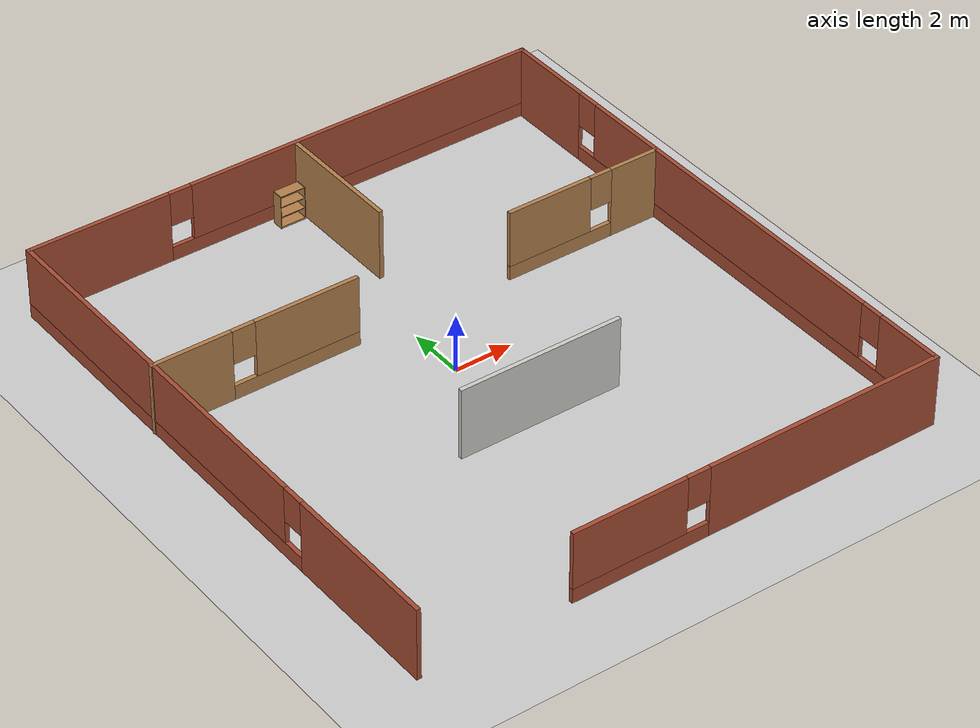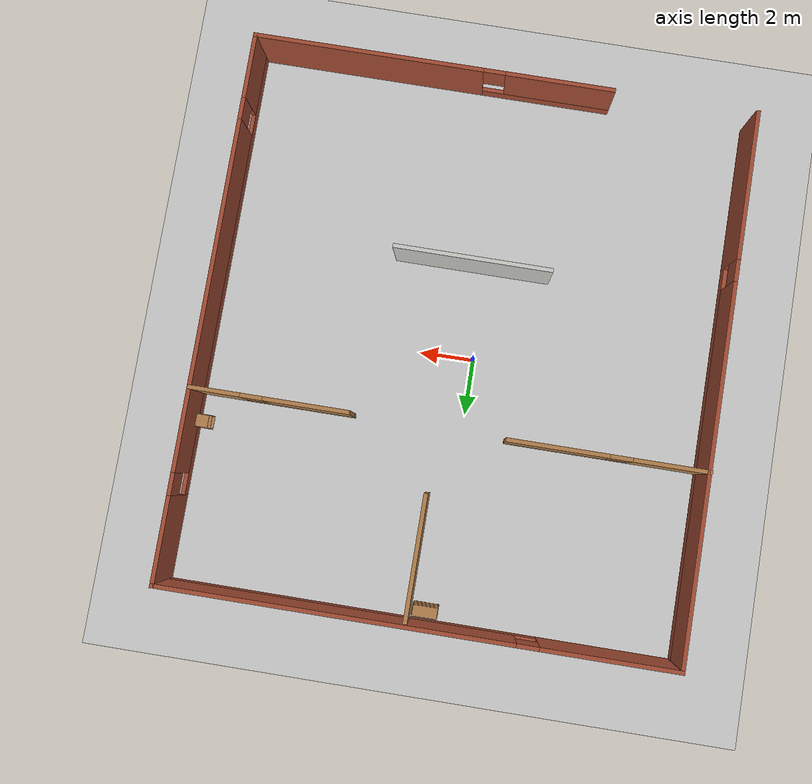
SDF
<sdf version="1.6">
 <world name="default">
  <light name="sun" type="directional">
   <pose>0 0 10 0 -0 0</pose>
   <diffuse>0.8 0.8 0.8 1</diffuse>
   <specular>0.1 0.1 0.1 1</specular>
   <attenuation>
    <range>1000</range>
    <constant>0.9</constant>
    <linear>0.01</linear>
    <quadratic>0.001</quadratic>
   </attenuation>
   <direction>-0.5 0.5 -1</direction>
  </light>
  <model name="ground_plane">
   <static>1</static>
   <link name="link">
    <collision name="collision">
     <geometry><plane><normal>0 0 1</normal><size>100 100</size></plane></geometry>
     <surface><friction><ode><mu>100</mu><mu2>50</mu2></ode></friction></surface>
    </collision>
    <visual name="visual">
     <cast_shadows>0</cast_shadows>
     <geometry><plane><normal>0 0 1</normal><size>100 100</size></plane></geometry>
     <material>
      <script><uri>file://media/materials/scripts/gazebo.material</uri><name>Gazebo/Grey</name></script>
     </material>
    </visual>
   </link>
  </model>
  <gravity>0 0 -9.8</gravity>
  <magnetic_field>6e-06 2.3e-05 -4.2e-05</magnetic_field>
  <atmosphere type="adiabatic"/>
  <physics name="default_physics" default="0" type="ode">
   <max_step_size>0.001</max_step_size>
   <real_time_factor>1</real_time_factor>
   <real_time_update_rate>1000</real_time_update_rate>
  </physics>
  <scene><ambient>0.4 0.4 0.4 1</ambient><background>0.7 0.7 0.7 1</background><shadows>1</shadows></scene>
  <spherical_coordinates>
   <surface_model>EARTH_WGS84</surface_model>
   <latitude_deg>0</latitude_deg>
   <longitude_deg>0</longitude_deg>
   <elevation>0</elevation>
   <heading_deg>0</heading_deg>
  </spherical_coordinates>
  <model name="Untitled">
   <pose>0.438494 -0.299 0 0 -0 0</pose>
   <link name="Wall_10">
    <pose>0.014006 9.925 0 0 -0 0</pose>
    <visual name="Wall_10_Visual_0">
     <pose>-6.74827 0 1.25 0 -0 0</pose>
     <geometry><box><size>5.00047 0.15 2.5</size></box></geometry>
     <material>
      <script><uri>file://media/materials/scripts/gazebo.material</uri><name>Gazebo/Bricks</name></script>
      <ambient>0.333333 0.666667 1 1</ambient>
     </material>
     <meta><layer>0</layer></meta>
    </visual>
    <collision name="Wall_10_Collision_0">
     <geometry><box><size>5.00047 0.15 2.5</size></box></geometry>
     <pose>-6.74827 0 1.25 0 -0 0</pose>
    </collision>
    <visual name="Wall_10_Visual_1">
     <pose>2.50023 0 0.25 0 -0 0</pose>
     <geometry><box><size>13.4965 0.15 0.5</size></box></geometry>
     <material>
      <script><uri>file://media/materials/scripts/gazebo.material</uri><name>Gazebo/Bricks</name></script>
      <ambient>0.333333 0.666667 1 1</ambient>
     </material>
     <meta><layer>0</layer></meta>
    </visual>
    <collision name="Wall_10_Collision_1">
     <geometry><box><size>13.4965 0.15 0.5</size></box></geometry>
     <pose>2.50023 0 0.25 0 -0 0</pose>
    </collision>
    <visual name="Wall_10_Visual_2">
     <pose>2.90023 0 1.5 0 -0 0</pose>
     <geometry><box><size>12.6965 0.15 2</size></box></geometry>
     <material>
      <script><uri>file://media/materials/scripts/gazebo.material</uri><name>Gazebo/Bricks</name></script>
      <ambient>0.333333 0.666667 1 1</ambient>
     </material>
     <meta><layer>0</layer></meta>
    </visual>
    <collision name="Wall_10_Collision_2">
     <geometry><box><size>12.6965 0.15 2</size></box></geometry>
     <pose>2.90023 0 1.5 0 -0 0</pose>
    </collision>
    <visual name="Wall_10_Visual_3">
     <pose>-3.84803 0 1.9 0 -0 0</pose>
     <geometry><box><size>0.8 0.15 1.2</size></box></geometry>
     <material>
      <script><uri>file://media/materials/scripts/gazebo.material</uri><name>Gazebo/Bricks</name></script>
      <ambient>0.333333 0.666667 1 1</ambient>
     </material>
     <meta><layer>0</layer></meta>
    </visual>
    <collision name="Wall_10_Collision_3">
     <geometry><box><size>0.8 0.15 1.2</size></box></geometry>
     <pose>-3.84803 0 1.9 0 -0 0</pose>
    </collision>
   </link>
   <link name="Wall_11">
    <pose>9.18751 0 0 0 0 -1.5708</pose>
    <visual name="Wall_11_Visual_0">
     <pose>-8.40838 0 1.25 0 -0 0</pose>
     <geometry><box><size>3.18324 0.15 2.5</size></box></geometry>
     <material>
      <script><uri>file://media/materials/scripts/gazebo.material</uri><name>Gazebo/Bricks</name></script>
      <ambient>1 0 0 1</ambient>
     </material>
     <meta><layer>0</layer></meta>
    </visual>
    <collision name="Wall_11_Collision_0">
     <geometry><box><size>3.18324 0.15 2.5</size></box></geometry>
     <pose>-8.40838 0 1.25 0 -0 0</pose>
    </collision>
    <visual name="Wall_11_Visual_1">
     <pose>1.59162 0 0.25 0 -0 0</pose>
     <geometry><box><size>16.8168 0.15 0.5</size></box></geometry>
     <material>
      <script><uri>file://media/materials/scripts/gazebo.material</uri><name>Gazebo/Bricks</name></script>
      <ambient>1 0 0 1</ambient>
     </material>
     <meta><layer>0</layer></meta>
    </visual>
    <collision name="Wall_11_Collision_1">
     <geometry><box><size>16.8168 0.15 0.5</size></box></geometry>
     <pose>1.59162 0 0.25 0 -0 0</pose>
    </collision>
    <visual name="Wall_11_Visual_2">
     <pose>0.366345 0 1.5 0 -0 0</pose>
     <geometry><box><size>12.7662 0.15 2</size></box></geometry>
     <material>
      <script><uri>file://media/materials/scripts/gazebo.material</uri><name>Gazebo/Bricks</name></script>
      <ambient>1 0 0 1</ambient>
     </material>
     <meta><layer>0</layer></meta>
    </visual>
    <collision name="Wall_11_Collision_2">
     <geometry><box><size>12.7662 0.15 2</size></box></geometry>
     <pose>0.366345 0 1.5 0 -0 0</pose>
    </collision>
    <visual name="Wall_11_Visual_3">
     <pose>8.77472 0 1.5 0 -0 0</pose>
     <geometry><box><size>2.45055 0.15 2</size></box></geometry>
     <material>
      <script><uri>file://media/materials/scripts/gazebo.material</uri><name>Gazebo/Bricks</name></script>
      <ambient>1 0 0 1</ambient>
     </material>
     <meta><layer>0</layer></meta>
    </visual>
    <collision name="Wall_11_Collision_3">
     <geometry><box><size>2.45055 0.15 2</size></box></geometry>
     <pose>8.77472 0 1.5 0 -0 0</pose>
    </collision>
    <visual name="Wall_11_Visual_4">
     <pose>-6.41676 0 1.9 0 -0 0</pose>
     <geometry><box><size>0.8 0.15 1.2</size></box></geometry>
     <material>
      <script><uri>file://media/materials/scripts/gazebo.material</uri><name>Gazebo/Bricks</name></script>
      <ambient>1 0 0 1</ambient>
     </material>
     <meta><layer>0</layer></meta>
    </visual>
    <collision name="Wall_11_Collision_4">
     <geometry><box><size>0.8 0.15 1.2</size></box></geometry>
     <pose>-6.41676 0 1.9 0 -0 0</pose>
    </collision>
    <visual name="Wall_11_Visual_5">
     <pose>7.14945 0 1.9 0 -0 0</pose>
     <geometry><box><size>0.8 0.15 1.2</size></box></geometry>
     <material>
      <script><uri>file://media/materials/scripts/gazebo.material</uri><name>Gazebo/Bricks</name></script>
      <ambient>1 0 0 1</ambient>
     </material>
     <meta><layer>0</layer></meta>
    </visual>
    <collision name="Wall_11_Collision_5">
     <geometry><box><size>0.8 0.15 1.2</size></box></geometry>
     <pose>7.14945 0 1.9 0 -0 0</pose>
    </collision>
   </link>
   <link name="Wall_14">
    <pose>2.63751 -9.925 0 0 -0 3.14159</pose>
    <visual name="Wall_14_Visual_0">
     <pose>-2.40596 0 1.25 0 -0 0</pose>
     <geometry><box><size>8.43808 0.15 2.5</size></box></geometry>
     <material>
      <script><uri>file://media/materials/scripts/gazebo.material</uri><name>Gazebo/Bricks</name></script>
      <ambient>1 0.333333 1 1</ambient>
     </material>
     <meta><layer>0</layer></meta>
    </visual>
    <collision name="Wall_14_Collision_0">
     <geometry><box><size>8.43808 0.15 2.5</size></box></geometry>
     <pose>-2.40596 0 1.25 0 -0 0</pose>
    </collision>
    <visual name="Wall_14_Visual_1">
     <pose>4.21904 0 0.25 0 -0 0</pose>
     <geometry><box><size>4.81192 0.15 0.5</size></box></geometry>
     <material>
      <script><uri>file://media/materials/scripts/gazebo.material</uri><name>Gazebo/Bricks</name></script>
      <ambient>1 0.333333 1 1</ambient>
     </material>
     <meta><layer>0</layer></meta>
    </visual>
    <collision name="Wall_14_Collision_1">
     <geometry><box><size>4.81192 0.15 0.5</size></box></geometry>
     <pose>4.21904 0 0.25 0 -0 0</pose>
    </collision>
    <visual name="Wall_14_Visual_2">
     <pose>4.61904 0 1.5 0 -0 0</pose>
     <geometry><box><size>4.01192 0.15 2</size></box></geometry>
     <material>
      <script><uri>file://media/materials/scripts/gazebo.material</uri><name>Gazebo/Bricks</name></script>
      <ambient>1 0.333333 1 1</ambient>
     </material>
     <meta><layer>0</layer></meta>
    </visual>
    <collision name="Wall_14_Collision_2">
     <geometry><box><size>4.01192 0.15 2</size></box></geometry>
     <pose>4.61904 0 1.5 0 -0 0</pose>
    </collision>
    <visual name="Wall_14_Visual_3">
     <pose>2.21308 0 1.9 0 -0 0</pose>
     <geometry><box><size>0.8 0.15 1.2</size></box></geometry>
     <material>
      <script><uri>file://media/materials/scripts/gazebo.material</uri><name>Gazebo/Bricks</name></script>
      <ambient>1 0.333333 1 1</ambient>
     </material>
     <meta><layer>0</layer></meta>
    </visual>
    <collision name="Wall_14_Collision_3">
     <geometry><box><size>0.8 0.15 1.2</size></box></geometry>
     <pose>2.21308 0 1.9 0 -0 0</pose>
    </collision>
   </link>
   <link name="Wall_17">
    <pose>-5.63751 3.07083 0 0 -0 0</pose>
    <visual name="Wall_17_Visual_0">
     <pose>-2.23621 0 1.25 0 -0 0</pose>
     <geometry><box><size>2.77759 0.15 2.5</size></box></geometry>
     <material>
      <script><uri>file://media/materials/scripts/gazebo.material</uri><name>Gazebo/Wood</name></script>
      <ambient>1 1 0 1</ambient>
     </material>
     <meta><layer>0</layer></meta>
    </visual>
    <collision name="Wall_17_Collision_0">
     <geometry><box><size>2.77759 0.15 2.5</size></box></geometry>
     <pose>-2.23621 0 1.25 0 -0 0</pose>
    </collision>
    <visual name="Wall_17_Visual_1">
     <pose>1.38879 0 0.25 0 -0 0</pose>
     <geometry><box><size>4.47241 0.15 0.5</size></box></geometry>
     <material>
      <script><uri>file://media/materials/scripts/gazebo.material</uri><name>Gazebo/Wood</name></script>
      <ambient>1 1 0 1</ambient>
     </material>
     <meta><layer>0</layer></meta>
    </visual>
    <collision name="Wall_17_Collision_1">
     <geometry><box><size>4.47241 0.15 0.5</size></box></geometry>
     <pose>1.38879 0 0.25 0 -0 0</pose>
    </collision>
    <visual name="Wall_17_Visual_2">
     <pose>1.78879 0 1.5 0 -0 0</pose>
     <geometry><box><size>3.67241 0.15 2</size></box></geometry>
     <material>
      <script><uri>file://media/materials/scripts/gazebo.material</uri><name>Gazebo/Wood</name></script>
      <ambient>1 1 0 1</ambient>
     </material>
     <meta><layer>0</layer></meta>
    </visual>
    <collision name="Wall_17_Collision_2">
     <geometry><box><size>3.67241 0.15 2</size></box></geometry>
     <pose>1.78879 0 1.5 0 -0 0</pose>
    </collision>
    <visual name="Wall_17_Visual_3">
     <pose>-0.447415 0 1.9 0 -0 0</pose>
     <geometry><box><size>0.8 0.15 1.2</size></box></geometry>
     <material>
      <script><uri>file://media/materials/scripts/gazebo.material</uri><name>Gazebo/Wood</name></script>
      <ambient>1 1 0 1</ambient>
     </material>
     <meta><layer>0</layer></meta>
    </visual>
    <collision name="Wall_17_Collision_3">
     <geometry><box><size>0.8 0.15 1.2</size></box></geometry>
     <pose>-0.447415 0 1.9 0 -0 0</pose>
    </collision>
   </link>
   <link name="Wall_19">
    <pose>6.38466 3.01 0 0 -0 3.14159</pose>
    <visual name="Wall_19_Visual_0">
     <pose>-1.94247 0 1.25 0 -0 0</pose>
     <geometry><box><size>1.86506 0.15 2.5</size></box></geometry>
     <material>
      <script><uri>file://media/materials/scripts/gazebo.material</uri><name>Gazebo/Wood</name></script>
      <ambient>1 0.333333 0.498039 1</ambient>
     </material>
     <meta><layer>0</layer></meta>
    </visual>
    <collision name="Wall_19_Collision_0">
     <geometry><box><size>1.86506 0.15 2.5</size></box></geometry>
     <pose>-1.94247 0 1.25 0 -0 0</pose>
    </collision>
    <visual name="Wall_19_Visual_1">
     <pose>0.93253 0 0.25 0 -0 0</pose>
     <geometry><box><size>3.88494 0.15 0.5</size></box></geometry>
     <material>
      <script><uri>file://media/materials/scripts/gazebo.material</uri><name>Gazebo/Wood</name></script>
      <ambient>1 0.333333 0.498039 1</ambient>
     </material>
     <meta><layer>0</layer></meta>
    </visual>
    <collision name="Wall_19_Collision_1">
     <geometry><box><size>3.88494 0.15 0.5</size></box></geometry>
     <pose>0.93253 0 0.25 0 -0 0</pose>
    </collision>
    <visual name="Wall_19_Visual_2">
     <pose>1.33253 0 1.5 0 -0 0</pose>
     <geometry><box><size>3.08494 0.15 2</size></box></geometry>
     <material>
      <script><uri>file://media/materials/scripts/gazebo.material</uri><name>Gazebo/Wood</name></script>
      <ambient>1 0.333333 0.498039 1</ambient>
     </material>
     <meta><layer>0</layer></meta>
    </visual>
    <collision name="Wall_19_Collision_2">
     <geometry><box><size>3.08494 0.15 2</size></box></geometry>
     <pose>1.33253 0 1.5 0 -0 0</pose>
    </collision>
    <visual name="Wall_19_Visual_3">
     <pose>-0.60994 0 1.9 0 -0 0</pose>
     <geometry><box><size>0.8 0.15 1.2</size></box></geometry>
     <material>
      <script><uri>file://media/materials/scripts/gazebo.material</uri><name>Gazebo/Wood</name></script>
      <ambient>1 0.333333 0.498039 1</ambient>
     </material>
     <meta><layer>0</layer></meta>
    </visual>
    <collision name="Wall_19_Collision_3">
     <geometry><box><size>0.8 0.15 1.2</size></box></geometry>
     <pose>-0.60994 0 1.9 0 -0 0</pose>
    </collision>
   </link>
   <link name="Wall_21">
    <collision name="Wall_21_Collision">
     <geometry><box><size>4.5 0.15 2.5</size></box></geometry>
     <pose>0 0 1.25 0 -0 0</pose>
    </collision>
    <visual name="Wall_21_Visual">
     <pose>0 0 1.25 0 -0 0</pose>
     <geometry><box><size>4.5 0.15 2.5</size></box></geometry>
     <material>
      <script><uri>file://media/materials/scripts/gazebo.material</uri><name>Gazebo/Wood</name></script>
      <ambient>0.666667 1 0 1</ambient>
     </material>
     <meta><layer>0</layer></meta>
    </visual>
    <pose>0.424424 7.58768 0 0 0 -1.5708</pose>
   </link>
   <link name="Wall_23">
    <collision name="Wall_23_Collision">
     <geometry><box><size>5.75 0.15 2.5</size></box></geometry>
     <pose>0 0 1.25 0 -0 0</pose>
    </collision>
    <visual name="Wall_23_Visual">
     <pose>0 0 1.25 0 -0 0</pose>
     <geometry><box><size>5.75 0.15 2.5</size></box></geometry>
     <material>
      <script><uri>file://media/materials/scripts/gazebo.material</uri><name>Gazebo/CeilingTiled</name></script>
      <ambient>0.760784 0.662745 0.627451 1</ambient>
     </material>
     <meta><layer>0</layer></meta>
    </visual>
    <pose>0.121839 -3.0735 0 0 -0 0</pose>
   </link>
   <link name="Wall_9">
    <pose>-9.15949 0 0 0 -0 1.5708</pose>
    <visual name="Wall_9_Visual_0">
     <pose>-7.25385 0 1.25 0 -0 0</pose>
     <geometry><box><size>5.4923 0.15 2.5</size></box></geometry>
     <material>
      <script><uri>file://media/materials/scripts/gazebo.material</uri><name>Gazebo/Bricks</name></script>
      <ambient>0.333333 0 0 1</ambient>
     </material>
     <meta><layer>0</layer></meta>
    </visual>
    <collision name="Wall_9_Collision_0">
     <geometry><box><size>5.4923 0.15 2.5</size></box></geometry>
     <pose>-7.25385 0 1.25 0 -0 0</pose>
    </collision>
    <visual name="Wall_9_Visual_1">
     <pose>2.74615 0 0.25 0 -0 0</pose>
     <geometry><box><size>14.5077 0.15 0.5</size></box></geometry>
     <material>
      <script><uri>file://media/materials/scripts/gazebo.material</uri><name>Gazebo/Bricks</name></script>
      <ambient>0.333333 0 0 1</ambient>
     </material>
     <meta><layer>0</layer></meta>
    </visual>
    <collision name="Wall_9_Collision_1">
     <geometry><box><size>14.5077 0.15 0.5</size></box></geometry>
     <pose>2.74615 0 0.25 0 -0 0</pose>
    </collision>
    <visual name="Wall_9_Visual_2">
     <pose>3.14615 0 1.5 0 -0 0</pose>
     <geometry><box><size>13.7077 0.15 2</size></box></geometry>
     <material>
      <script><uri>file://media/materials/scripts/gazebo.material</uri><name>Gazebo/Bricks</name></script>
      <ambient>0.333333 0 0 1</ambient>
     </material>
     <meta><layer>0</layer></meta>
    </visual>
    <collision name="Wall_9_Collision_2">
     <geometry><box><size>13.7077 0.15 2</size></box></geometry>
     <pose>3.14615 0 1.5 0 -0 0</pose>
    </collision>
    <visual name="Wall_9_Visual_3">
     <pose>-4.1077 0 1.9 0 -0 0</pose>
     <geometry><box><size>0.8 0.15 1.2</size></box></geometry>
     <material>
      <script><uri>file://media/materials/scripts/gazebo.material</uri><name>Gazebo/Bricks</name></script>
      <ambient>0.333333 0 0 1</ambient>
     </material>
     <meta><layer>0</layer></meta>
    </visual>
    <collision name="Wall_9_Collision_3">
     <geometry><box><size>0.8 0.15 1.2</size></box></geometry>
     <pose>-4.1077 0 1.9 0 -0 0</pose>
    </collision>
   </link>
   <static>1</static>
  </model>
  <model name="bookshelf">
   <static>1</static>
   <link name="link">
    <inertial><mass>1</mass></inertial>
    <collision name="back">
     <pose>0 0.005 0.6 0 -0 0</pose>
     <geometry><box><size>0.9 0.01 1.2</size></box></geometry>
    </collision>
    <visual name="visual1">
     <pose>0 0.005 0.6 0 -0 0</pose>
     <geometry><box><size>0.9 0.01 1.2</size></box></geometry>
     <material>
      <script><uri>file://media/materials/scripts/gazebo.material</uri><name>Gazebo/Wood</name></script>
     </material>
    </visual>
    <collision name="left_side">
     <pose>0.45 -0.195 0.6 0 -0 0</pose>
     <geometry><box><size>0.02 0.4 1.2</size></box></geometry>
    </collision>
    <visual name="visual2">
     <pose>0.45 -0.195 0.6 0 -0 0</pose>
     <geometry><box><size>0.02 0.4 1.2</size></box></geometry>
     <material>
      <script><uri>file://media/materials/scripts/gazebo.material</uri><name>Gazebo/Wood</name></script>
     </material>
    </visual>
    <collision name="right_side">
     <pose>-0.45 -0.195 0.6 0 -0 0</pose>
     <geometry><box><size>0.02 0.4 1.2</size></box></geometry>
    </collision>
    <visual name="visual3">
     <pose>-0.45 -0.195 0.6 0 -0 0</pose>
     <geometry><box><size>0.02 0.4 1.2</size></box></geometry>
     <material>
      <script><uri>file://media/materials/scripts/gazebo.material</uri><name>Gazebo/Wood</name></script>
     </material>
    </visual>
    <collision name="bottom">
     <pose>0 -0.195 0.03 0 -0 0</pose>
     <geometry><box><size>0.88 0.4 0.06</size></box></geometry>
    </collision>
    <visual name="visual4">
     <pose>0 -0.195 0.03 0 -0 0</pose>
     <geometry><box><size>0.88 0.4 0.06</size></box></geometry>
     <material>
      <script><uri>file://media/materials/scripts/gazebo.material</uri><name>Gazebo/Wood</name></script>
     </material>
    </visual>
    <collision name="top">
     <pose>0 -0.195 1.19 0 -0 0</pose>
     <geometry><box><size>0.88 0.4 0.02</size></box></geometry>
    </collision>
    <visual name="visual5">
     <pose>0 -0.195 1.19 0 -0 0</pose>
     <geometry><box><size>0.88 0.4 0.02</size></box></geometry>
     <material>
      <script><uri>file://media/materials/scripts/gazebo.material</uri><name>Gazebo/Wood</name></script>
     </material>
    </visual>
    <collision name="low_shelf">
     <pose>0 -0.195 0.43 0 -0 0</pose>
     <geometry><box><size>0.88 0.4 0.02</size></box></geometry>
    </collision>
    <visual name="visual6">
     <pose>0 -0.195 0.43 0 -0 0</pose>
     <geometry><box><size>0.88 0.4 0.02</size></box></geometry>
     <material>
      <script><uri>file://media/materials/scripts/gazebo.material</uri><name>Gazebo/Wood</name></script>
     </material>
    </visual>
    <collision name="high_shelf">
     <pose>0 -0.195 0.8 0 -0 0</pose>
     <geometry><box><size>0.88 0.4 0.02</size></box></geometry>
    </collision>
    <visual name="visual7">
     <pose>0 -0.195 0.8 0 -0 0</pose>
     <geometry><box><size>0.88 0.4 0.02</size></box></geometry>
     <material>
      <script><uri>file://media/materials/scripts/gazebo.material</uri><name>Gazebo/Wood</name></script>
     </material>
    </visual>
   </link>
   <pose>0.273776 9.3616 0 0 -0 0</pose>
  </model>
  <model name="cabinet">
   <static>1</static>
   <link name="cabinet_bottom_plate">
    <inertial>
     <pose>0 0 -1 0 -0 0</pose>
     <inertia><ixx>2.05</ixx><ixy>0</ixy><ixz>0</ixz><iyy>2.05</iyy><iyz>0</iyz><izz>2.05</izz></inertia>
     <mass>25</mass>
    </inertial>
    <collision name="cabinet_bottom_plate_geom">
     <pose>0 0 0.01 0 -0 0</pose>
     <geometry><box><size>0.45 0.45 0.02</size></box></geometry>
    </collision>
    <visual name="cabinet_bottom_plate_geom_visual">
     <pose>0 0 0.01 0 -0 0</pose>
     <geometry><box><size>0.45 0.45 0.02</size></box></geometry>
     <material>
      <script><uri>file://media/materials/scripts/gazebo.material</uri><name>Gazebo/Wood</name></script>
     </material>
    </visual>
    <collision name="cabinet_bottom_plate_geom_cabinet_back_plate">
     <pose>0.235 0 0.51 0 -0 0</pose>
     <geometry><box><size>0.02 0.45 1.02</size></box></geometry>
    </collision>
    <visual name="cabinet_bottom_plate_geom_cabinet_back_plate_visual">
     <pose>0.235 0 0.51 0 -0 0</pose>
     <geometry><box><size>0.02 0.45 1.02</size></box></geometry>
     <material>
      <script><uri>file://media/materials/scripts/gazebo.material</uri><name>Gazebo/Wood</name></script>
     </material>
    </visual>
    <collision name="cabinet_bottom_plate_geom_cabinet_left_plate">
     <pose>0 0.235 0.51 0 -0 0</pose>
     <geometry><box><size>0.45 0.02 1.02</size></box></geometry>
    </collision>
    <visual name="cabinet_bottom_plate_geom_cabinet_left_plate_visual">
     <pose>0 0.235 0.51 0 -0 0</pose>
     <geometry><box><size>0.45 0.02 1.02</size></box></geometry>
     <material>
      <script><uri>file://media/materials/scripts/gazebo.material</uri><name>Gazebo/Wood</name></script>
     </material>
    </visual>
    <collision name="cabinet_bottom_plate_geom_cabinet_middle_plate">
     <pose>0 0 0.51 0 -0 0</pose>
     <geometry><box><size>0.45 0.45 0.02</size></box></geometry>
    </collision>
    <visual name="cabinet_bottom_plate_geom_cabinet_middle_plate_visual">
     <pose>0 0 0.51 0 -0 0</pose>
     <geometry><box><size>0.45 0.45 0.02</size></box></geometry>
     <material>
      <script><uri>file://media/materials/scripts/gazebo.material</uri><name>Gazebo/Wood</name></script>
     </material>
    </visual>
    <collision name="cabinet_bottom_plate_geom_cabinet_right_plate">
     <pose>0 -0.235 0.51 0 -0 0</pose>
     <geometry><box><size>0.45 0.02 1.02</size></box></geometry>
    </collision>
    <visual name="cabinet_bottom_plate_geom_cabinet_right_plate_visual">
     <pose>0 -0.235 0.51 0 -0 0</pose>
     <geometry><box><size>0.45 0.02 1.02</size></box></geometry>
     <material>
      <script><uri>file://media/materials/scripts/gazebo.material</uri><name>Gazebo/Wood</name></script>
     </material>
    </visual>
    <collision name="cabinet_bottom_plate_geom_cabinet_top_plate">
     <pose>0 0 1.01 0 -0 0</pose>
     <geometry><box><size>0.45 0.45 0.02</size></box></geometry>
    </collision>
    <visual name="cabinet_bottom_plate_geom_cabinet_top_plate_visual">
     <pose>0 0 1.01 0 -0 0</pose>
     <geometry><box><size>0.45 0.45 0.02</size></box></geometry>
     <material>
      <script><uri>file://media/materials/scripts/gazebo.material</uri><name>Gazebo/Wood</name></script>
     </material>
    </visual>
   </link>
   <pose>9.30807 3.78564 0 0 -0 0</pose>
  </model>
 </world>
</sdf>
